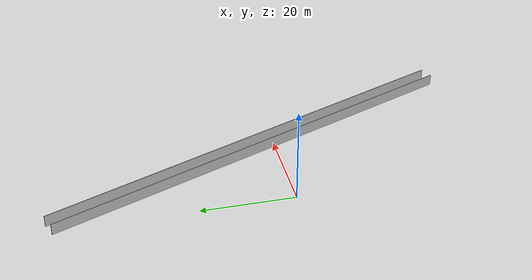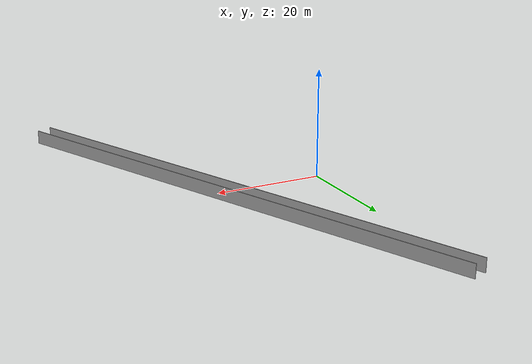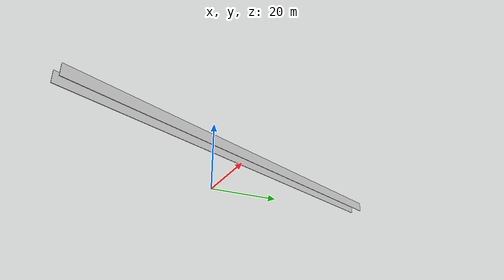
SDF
<?xml version="1.0" ?>
<sdf version="1.6">
  <model name="sps_4922">
    <pose frame="">0 0 0 0 -0 0</pose>
    <static>1</static>
    <self_collide>0</self_collide>
    <allow_auto_disable>0</allow_auto_disable>
    <link name="Wall4703">
      <kinematic>0</kinematic>
      <gravity>1</gravity>
      <self_collide>0</self_collide>
      <collision name="collision">
        <geometry>
          <box>
            <size>98.5488 0.15 2.5</size>
          </box>
        </geometry>
        <pose frame="">0 0 0 0 -0 0</pose>
      </collision>
      <visual name="visual">
        <geometry>
          <box>
            <size>98.5488 0.15 2.5</size>
          </box>
        </geometry>
        <pose frame="">0 0 0 0 -0 0</pose>
        <cast_shadows>1</cast_shadows>
        <transparency>0.0</transparency>
      </visual>
      <pose frame="">17.6174 3.1902 1.25 0 0 -1.18648</pose>
    </link>
    <link name="Wall6440">
      <kinematic>0</kinematic>
      <gravity>1</gravity>
      <self_collide>0</self_collide>
      <collision name="collision">
        <geometry>
          <box>
            <size>98.5486 0.15 2.5</size>
          </box>
        </geometry>
        <pose frame="">0 0 0 0 -0 0</pose>
      </collision>
      <visual name="visual">
        <geometry>
          <box>
            <size>98.5486 0.15 2.5</size>
          </box>
        </geometry>
        <pose frame="">0 0 0 0 -0 0</pose>
        <cast_shadows>1</cast_shadows>
        <transparency>0.0</transparency>
      </visual>
      <pose frame="">20.3985 4.3148 1.25 0 0 -1.18647</pose>
    </link>
  </model>
</sdf>
